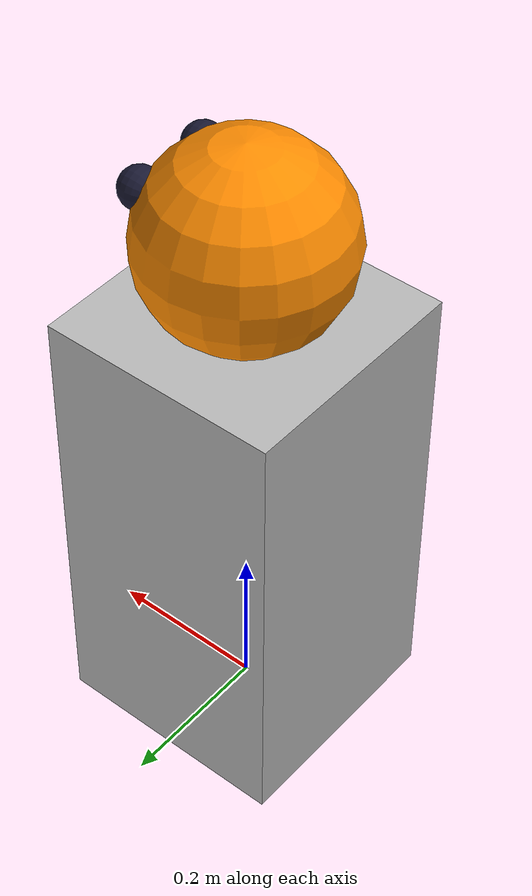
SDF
<?xml version="1.0"?>
<sdf version="1.6">
  <model name="Victim 1">
    <static>true</static>
    <link name="robot_link">
      <pose>0 0 .3 0 0 0</pose>
      <collision name="body_collision">
        <geometry>
          <box>
            <size>.3 .3 .6</size>
          </box>
        </geometry>

      </collision>
      <visual name="wheel1_visual">
        <pose>0.1 -.05 0.45 0 1.57079 0</pose>
        <geometry>
          <sphere>
            <radius>0.025</radius>
          </sphere>
        </geometry>

   <material> <!-- Wheel material -->
          <ambient>0.1 0.1 0.1 1</ambient>
          <diffuse>0.1 0.1 0.2 1</diffuse>
          <specular>0 0 0 0</specular>
          <emissive>0 0 0 1</emissive>
        </material> <!-- End wheel material -->

      </visual>
      <visual name="wheel2_visual">
        <pose>0.1 .05 0.45 0 1.57079 0</pose>
        <geometry>
          <sphere>
            <radius>0.025</radius>
          </sphere>
        </geometry>

   <material> <!-- Wheel material -->
          <ambient>0.1 0.1 0.1 1</ambient>
          <diffuse>0.1 0.1 0.2 1</diffuse>
          <specular>0 0 0 0</specular>
          <emissive>0 0 0 1</emissive>
        </material> <!-- End wheel material -->

      </visual>

      <visual name="body_visual_out">
        <geometry>
          <box>
            <size>0.3 0.3 0.6</size>
          </box>

        </geometry>
      </visual>

      <visual name="body_visual1">
        <pose>.03 0 0 0 0 0</pose>
        <geometry>
          <box>
            <size>0.25 0.25 0.25</size>
          </box>

        </geometry>
	<material>
	  <script>
	    <uri>file://victim1/materials/scripts/</uri>
	    <uri>file://victim1/materials/textures/</uri>
	    <name>RepeatedTextureVic1</name>
	  </script>
	  <pbr>
	    <metal>
              <albedo_map>vic1.png</albedo_map>
	    </metal>
	  </pbr>

	</material>
      </visual>

      <visual name="head_visual">
        <pose>0 0 0.4 0 0 -2.5</pose>
        <geometry>
          <sphere>
            <radius>0.125</radius>
          </sphere>
        </geometry>
	 <material> <!-- head material -->
          <ambient>1.0 0.55 0.0 1</ambient>
          <diffuse>1.0 0.55 0.0 1</diffuse>
          <specular>0 0 0 0</specular>
          <emissive>0 0 0 1</emissive>
        </material> <!-- End head material -->
      </visual>
    </link>
  </model>
</sdf>
